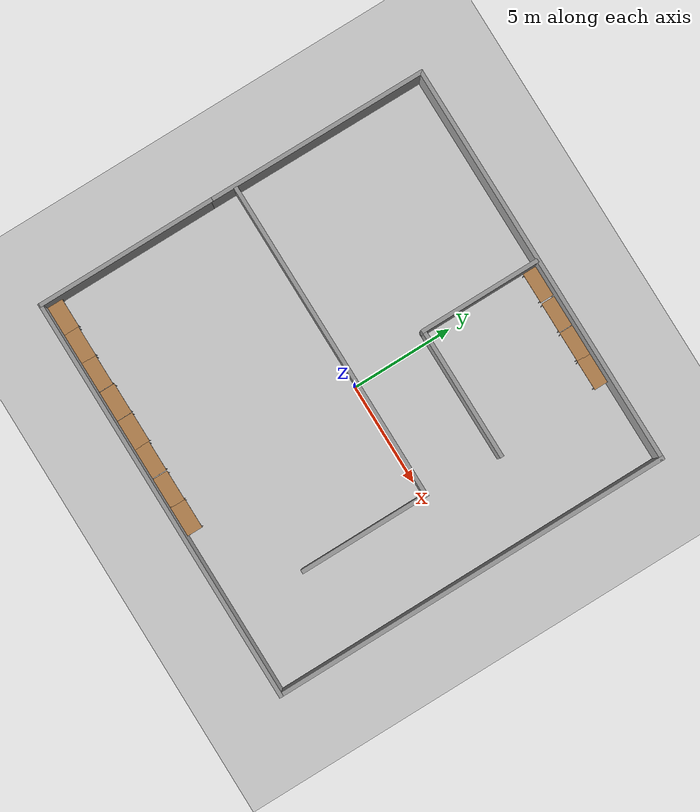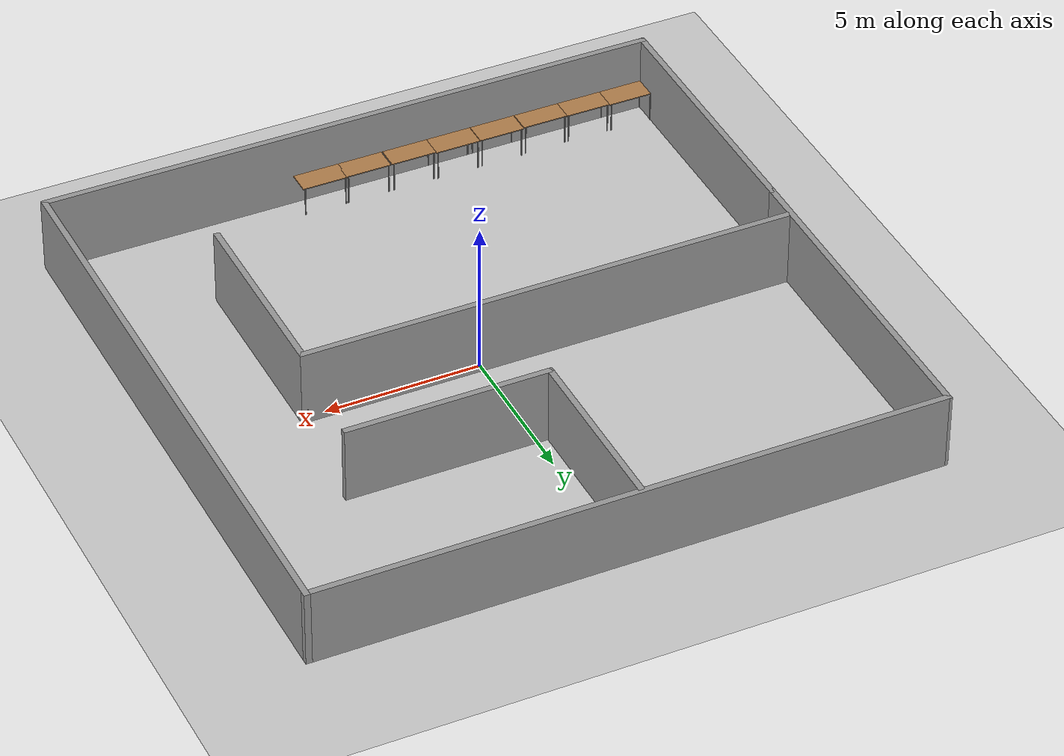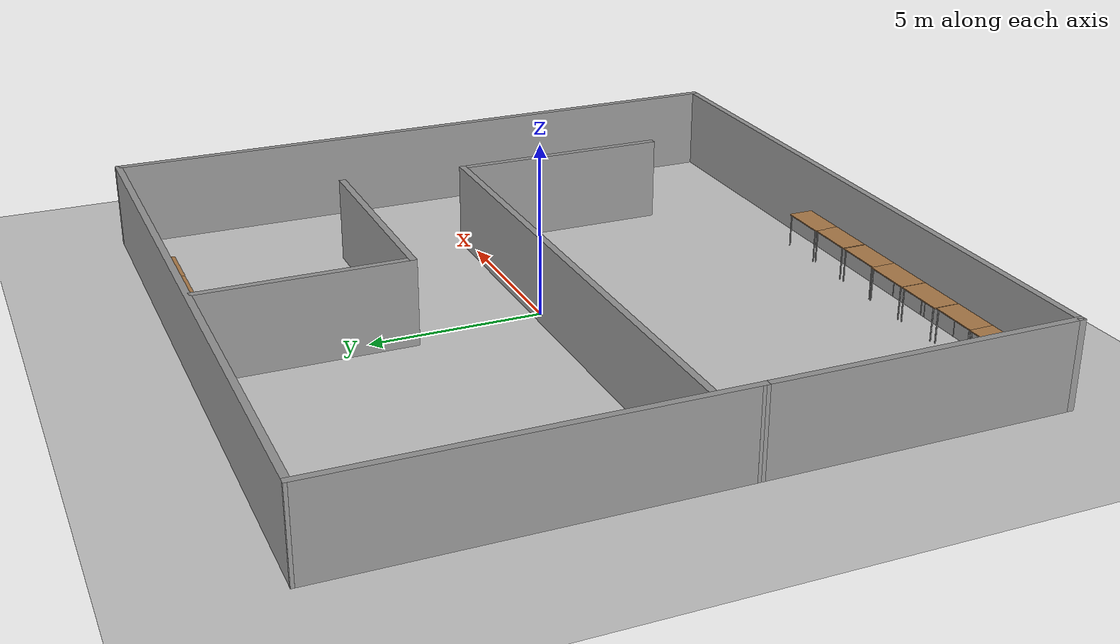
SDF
<sdf version="1.4">
 <world name="default">
  <light name="sun" type="directional">
   <pose>0 0 10 0 -0 0</pose>
   <diffuse>0.8 0.8 0.8 1</diffuse>
   <specular>0.2 0.2 0.2 1</specular>
   <attenuation>
    <range>1000</range>
    <constant>0.9</constant>
    <linear>0.01</linear>
    <quadratic>0.001</quadratic>
   </attenuation>
   <direction>-0.5 0.1 -0.9</direction>
  </light>
  <model name="ground_plane">
   <static>1</static>
   <link name="link">
    <collision name="collision">
     <geometry><plane><normal>0 0 1</normal><size>100 100</size></plane></geometry>
     <surface><friction><ode><mu>100</mu><mu2>50</mu2></ode></friction></surface>
    </collision>
    <visual name="visual">
     <cast_shadows>0</cast_shadows>
     <geometry><plane><normal>0 0 1</normal><size>100 100</size></plane></geometry>
     <material>
      <script><uri>file://media/materials/scripts/gazebo.material</uri><name>Gazebo/Grey</name></script>
     </material>
    </visual>
    <velocity_decay><linear>0</linear><angular>0</angular></velocity_decay>
   </link>
  </model>
  <model name="office">
   <link name="Wall_11">
    <collision name="Wall_11_Collision">
     <geometry><box><size>6.01646 0.2 2.5</size></box></geometry>
     <pose>0 0 1.25 0 -0 0</pose>
    </collision>
    <visual name="Wall_11_Visual">
     <pose>0 0 1.25 0 -0 0</pose>
     <geometry><box><size>6.01646 0.2 2.5</size></box></geometry>
     <material>
      <script><uri>file://media/materials/scripts/gazebo.material</uri><name>Gazebo/Grey</name></script>
     </material>
    </visual>
    <velocity_decay><linear>0</linear><angular>0</angular></velocity_decay>
    <pose>-0.44436 6.75116 0 0 0 -1.5708</pose>
   </link>
   <link name="Wall_12">
    <collision name="Wall_12_Collision">
     <geometry><box><size>6.63524 0.2 2.5</size></box></geometry>
     <pose>0 0 1.25 0 -0 0</pose>
    </collision>
    <visual name="Wall_12_Visual">
     <pose>0 0 1.25 0 -0 0</pose>
     <geometry><box><size>6.63524 0.2 2.5</size></box></geometry>
     <material>
      <script><uri>file://media/materials/scripts/gazebo.material</uri><name>Gazebo/Grey</name></script>
     </material>
    </visual>
    <velocity_decay><linear>0</linear><angular>0</angular></velocity_decay>
    <pose>2.77326 3.84293 0 0 -0 0</pose>
   </link>
   <link name="Wall_2">
    <collision name="Wall_2_Collision">
     <geometry><box><size>8.96801 0.2 2.5</size></box></geometry>
     <pose>0 0 1.25 0 -0 0</pose>
    </collision>
    <visual name="Wall_2_Visual">
     <pose>0 0 1.25 0 -0 0</pose>
     <geometry><box><size>8.96801 0.2 2.5</size></box></geometry>
     <material>
      <script><uri>file://media/materials/scripts/gazebo.material</uri><name>Gazebo/Grey</name></script>
     </material>
    </visual>
    <velocity_decay><linear>0</linear><angular>0</angular></velocity_decay>
    <pose>-10.276 -5.50982 0 0 0 -1.5708</pose>
   </link>
   <link name="Wall_3">
    <collision name="Wall_3_Collision">
     <geometry><box><size>20.3033 0.2 2.5</size></box></geometry>
     <pose>0 0 1.25 0 -0 0</pose>
    </collision>
    <visual name="Wall_3_Visual">
     <pose>0 0 1.25 0 -0 0</pose>
     <geometry><box><size>20.3033 0.2 2.5</size></box></geometry>
     <material>
      <script><uri>file://media/materials/scripts/gazebo.material</uri><name>Gazebo/Grey</name></script>
     </material>
    </visual>
    <velocity_decay><linear>0</linear><angular>0</angular></velocity_decay>
    <pose>-0.224381 -9.89383 0 0 -0 0</pose>
   </link>
   <link name="Wall_4">
    <collision name="Wall_4_Collision">
     <geometry><box><size>19.877 0.2 2.5</size></box></geometry>
     <pose>0 0 1.25 0 -0 0</pose>
    </collision>
    <visual name="Wall_4_Visual">
     <pose>0 0 1.25 0 -0 0</pose>
     <geometry><box><size>19.877 0.2 2.5</size></box></geometry>
     <material>
      <script><uri>file://media/materials/scripts/gazebo.material</uri><name>Gazebo/Grey</name></script>
     </material>
    </visual>
    <velocity_decay><linear>0</linear><angular>0</angular></velocity_decay>
    <pose>9.82727 -0.055341 0 0 -0 1.5708</pose>
   </link>
   <link name="Wall_5">
    <collision name="Wall_5_Collision">
     <geometry><box><size>20.2482 0.2 2.5</size></box></geometry>
     <pose>0 0 1.25 0 -0 0</pose>
    </collision>
    <visual name="Wall_5_Visual">
     <pose>0 0 1.25 0 -0 0</pose>
     <geometry><box><size>20.2482 0.2 2.5</size></box></geometry>
     <material>
      <script><uri>file://media/materials/scripts/gazebo.material</uri><name>Gazebo/Grey</name></script>
     </material>
    </visual>
    <velocity_decay><linear>0</linear><angular>0</angular></velocity_decay>
    <pose>-0.196851 9.78314 0 0 -0 3.14159</pose>
   </link>
   <link name="Wall_6">
    <collision name="Wall_6_Collision">
     <geometry><box><size>11.1091 0.2 2.5</size></box></geometry>
     <pose>0 0 1.25 0 -0 0</pose>
    </collision>
    <visual name="Wall_6_Visual">
     <pose>0 0 1.25 0 -0 0</pose>
     <geometry><box><size>11.1091 0.2 2.5</size></box></geometry>
     <material>
      <script><uri>file://media/materials/scripts/gazebo.material</uri><name>Gazebo/Grey</name></script>
     </material>
    </visual>
    <velocity_decay><linear>0</linear><angular>0</angular></velocity_decay>
    <pose>-10.2485 4.32867 0 0 0 -1.57584</pose>
   </link>
   <link name="Wall_8">
    <collision name="Wall_8_Collision">
     <geometry><box><size>16.0406 0.2 2.5</size></box></geometry>
     <pose>0 0 1.25 0 -0 0</pose>
    </collision>
    <visual name="Wall_8_Visual">
     <pose>0 0 1.25 0 -0 0</pose>
     <geometry><box><size>16.0406 0.2 2.5</size></box></geometry>
     <material>
      <script><uri>file://media/materials/scripts/gazebo.material</uri><name>Gazebo/Grey</name></script>
     </material>
    </visual>
    <velocity_decay><linear>0</linear><angular>0</angular></velocity_decay>
    <pose>-2.17692 0.130291 0 0 -0 0</pose>
   </link>
   <link name="Wall_9">
    <collision name="Wall_9_Collision">
     <geometry><box><size>6.51148 0.2 2.5</size></box></geometry>
     <pose>0 0 1.25 0 -0 0</pose>
    </collision>
    <visual name="Wall_9_Visual">
     <pose>0 0 1.25 0 -0 0</pose>
     <geometry><box><size>6.51148 0.2 2.5</size></box></geometry>
     <material>
      <script><uri>file://media/materials/scripts/gazebo.material</uri><name>Gazebo/Grey</name></script>
     </material>
    </visual>
    <velocity_decay><linear>0</linear><angular>0</angular></velocity_decay>
    <pose>5.74337 -3.02545 0 0 0 -1.5708</pose>
   </link>
   <static>1</static>
  </model>
  <model name="table">
   <static>1</static>
   <link name="link">
    <collision name="surface">
     <pose>0 0 1 0 -0 0</pose>
     <geometry><box><size>1.5 0.8 0.03</size></box></geometry>
     <surface><friction><ode><mu>0.6</mu><mu2>0.6</mu2></ode></friction></surface>
    </collision>
    <visual name="visual1">
     <pose>0 0 1 0 -0 0</pose>
     <geometry><box><size>1.5 0.8 0.03</size></box></geometry>
     <material>
      <script><uri>file://media/materials/scripts/gazebo.material</uri><name>Gazebo/Wood</name></script>
     </material>
    </visual>
    <collision name="front_left_leg">
     <pose>0.68 0.38 0.5 0 -0 0</pose>
     <geometry><cylinder><radius>0.02</radius><length>1</length></cylinder></geometry>
    </collision>
    <visual name="front_left_leg">
     <pose>0.68 0.38 0.5 0 -0 0</pose>
     <geometry><cylinder><radius>0.02</radius><length>1</length></cylinder></geometry>
     <material>
      <script><uri>file://media/materials/scripts/gazebo.material</uri><name>Gazebo/Grey</name></script>
     </material>
    </visual>
    <collision name="front_right_leg">
     <pose>0.68 -0.38 0.5 0 -0 0</pose>
     <geometry><cylinder><radius>0.02</radius><length>1</length></cylinder></geometry>
    </collision>
    <visual name="front_right_leg">
     <pose>0.68 -0.38 0.5 0 -0 0</pose>
     <geometry><cylinder><radius>0.02</radius><length>1</length></cylinder></geometry>
     <material>
      <script><uri>file://media/materials/scripts/gazebo.material</uri><name>Gazebo/Grey</name></script>
     </material>
    </visual>
    <collision name="back_right_leg">
     <pose>-0.68 -0.38 0.5 0 -0 0</pose>
     <geometry><cylinder><radius>0.02</radius><length>1</length></cylinder></geometry>
    </collision>
    <visual name="back_right_leg">
     <pose>-0.68 -0.38 0.5 0 -0 0</pose>
     <geometry><cylinder><radius>0.02</radius><length>1</length></cylinder></geometry>
     <material>
      <script><uri>file://media/materials/scripts/gazebo.material</uri><name>Gazebo/Grey</name></script>
     </material>
    </visual>
    <collision name="back_left_leg">
     <pose>-0.68 0.38 0.5 0 -0 0</pose>
     <geometry><cylinder><radius>0.02</radius><length>1</length></cylinder></geometry>
    </collision>
    <visual name="back_left_leg">
     <pose>-0.68 0.38 0.5 0 -0 0</pose>
     <geometry><cylinder><radius>0.02</radius><length>1</length></cylinder></geometry>
     <material>
      <script><uri>file://media/materials/scripts/gazebo.material</uri><name>Gazebo/Grey</name></script>
     </material>
    </visual>
    <velocity_decay><linear>0</linear><angular>0</angular></velocity_decay>
   </link>
   <pose>-9.49029 -9.42928 0 0 -0 0</pose>
  </model>
  <model name="table_0">
   <static>1</static>
   <link name="link">
    <collision name="surface">
     <pose>0 0 1 0 -0 0</pose>
     <geometry><box><size>1.5 0.8 0.03</size></box></geometry>
     <surface><friction><ode><mu>0.6</mu><mu2>0.6</mu2></ode></friction></surface>
    </collision>
    <visual name="visual1">
     <pose>0 0 1 0 -0 0</pose>
     <geometry><box><size>1.5 0.8 0.03</size></box></geometry>
     <material>
      <script><uri>file://media/materials/scripts/gazebo.material</uri><name>Gazebo/Wood</name></script>
     </material>
    </visual>
    <collision name="front_left_leg">
     <pose>0.68 0.38 0.5 0 -0 0</pose>
     <geometry><cylinder><radius>0.02</radius><length>1</length></cylinder></geometry>
    </collision>
    <visual name="front_left_leg">
     <pose>0.68 0.38 0.5 0 -0 0</pose>
     <geometry><cylinder><radius>0.02</radius><length>1</length></cylinder></geometry>
     <material>
      <script><uri>file://media/materials/scripts/gazebo.material</uri><name>Gazebo/Grey</name></script>
     </material>
    </visual>
    <collision name="front_right_leg">
     <pose>0.68 -0.38 0.5 0 -0 0</pose>
     <geometry><cylinder><radius>0.02</radius><length>1</length></cylinder></geometry>
    </collision>
    <visual name="front_right_leg">
     <pose>0.68 -0.38 0.5 0 -0 0</pose>
     <geometry><cylinder><radius>0.02</radius><length>1</length></cylinder></geometry>
     <material>
      <script><uri>file://media/materials/scripts/gazebo.material</uri><name>Gazebo/Grey</name></script>
     </material>
    </visual>
    <collision name="back_right_leg">
     <pose>-0.68 -0.38 0.5 0 -0 0</pose>
     <geometry><cylinder><radius>0.02</radius><length>1</length></cylinder></geometry>
    </collision>
    <visual name="back_right_leg">
     <pose>-0.68 -0.38 0.5 0 -0 0</pose>
     <geometry><cylinder><radius>0.02</radius><length>1</length></cylinder></geometry>
     <material>
      <script><uri>file://media/materials/scripts/gazebo.material</uri><name>Gazebo/Grey</name></script>
     </material>
    </visual>
    <collision name="back_left_leg">
     <pose>-0.68 0.38 0.5 0 -0 0</pose>
     <geometry><cylinder><radius>0.02</radius><length>1</length></cylinder></geometry>
    </collision>
    <visual name="back_left_leg">
     <pose>-0.68 0.38 0.5 0 -0 0</pose>
     <geometry><cylinder><radius>0.02</radius><length>1</length></cylinder></geometry>
     <material>
      <script><uri>file://media/materials/scripts/gazebo.material</uri><name>Gazebo/Grey</name></script>
     </material>
    </visual>
    <velocity_decay><linear>0</linear><angular>0</angular></velocity_decay>
   </link>
   <pose>-8 -9.45963 0 0 -0 0</pose>
  </model>
  <model name="table_1">
   <static>1</static>
   <link name="link">
    <collision name="surface">
     <pose>0 0 1 0 -0 0</pose>
     <geometry><box><size>1.5 0.8 0.03</size></box></geometry>
     <surface><friction><ode><mu>0.6</mu><mu2>0.6</mu2></ode></friction></surface>
    </collision>
    <visual name="visual1">
     <pose>0 0 1 0 -0 0</pose>
     <geometry><box><size>1.5 0.8 0.03</size></box></geometry>
     <material>
      <script><uri>file://media/materials/scripts/gazebo.material</uri><name>Gazebo/Wood</name></script>
     </material>
    </visual>
    <collision name="front_left_leg">
     <pose>0.68 0.38 0.5 0 -0 0</pose>
     <geometry><cylinder><radius>0.02</radius><length>1</length></cylinder></geometry>
    </collision>
    <visual name="front_left_leg">
     <pose>0.68 0.38 0.5 0 -0 0</pose>
     <geometry><cylinder><radius>0.02</radius><length>1</length></cylinder></geometry>
     <material>
      <script><uri>file://media/materials/scripts/gazebo.material</uri><name>Gazebo/Grey</name></script>
     </material>
    </visual>
    <collision name="front_right_leg">
     <pose>0.68 -0.38 0.5 0 -0 0</pose>
     <geometry><cylinder><radius>0.02</radius><length>1</length></cylinder></geometry>
    </collision>
    <visual name="front_right_leg">
     <pose>0.68 -0.38 0.5 0 -0 0</pose>
     <geometry><cylinder><radius>0.02</radius><length>1</length></cylinder></geometry>
     <material>
      <script><uri>file://media/materials/scripts/gazebo.material</uri><name>Gazebo/Grey</name></script>
     </material>
    </visual>
    <collision name="back_right_leg">
     <pose>-0.68 -0.38 0.5 0 -0 0</pose>
     <geometry><cylinder><radius>0.02</radius><length>1</length></cylinder></geometry>
    </collision>
    <visual name="back_right_leg">
     <pose>-0.68 -0.38 0.5 0 -0 0</pose>
     <geometry><cylinder><radius>0.02</radius><length>1</length></cylinder></geometry>
     <material>
      <script><uri>file://media/materials/scripts/gazebo.material</uri><name>Gazebo/Grey</name></script>
     </material>
    </visual>
    <collision name="back_left_leg">
     <pose>-0.68 0.38 0.5 0 -0 0</pose>
     <geometry><cylinder><radius>0.02</radius><length>1</length></cylinder></geometry>
    </collision>
    <visual name="back_left_leg">
     <pose>-0.68 0.38 0.5 0 -0 0</pose>
     <geometry><cylinder><radius>0.02</radius><length>1</length></cylinder></geometry>
     <material>
      <script><uri>file://media/materials/scripts/gazebo.material</uri><name>Gazebo/Grey</name></script>
     </material>
    </visual>
    <velocity_decay><linear>0</linear><angular>0</angular></velocity_decay>
   </link>
   <pose>-6.51969 -9.47316 0 0 -0 0</pose>
  </model>
  <model name="table_2">
   <static>1</static>
   <link name="link">
    <collision name="surface">
     <pose>0 0 1 0 -0 0</pose>
     <geometry><box><size>1.5 0.8 0.03</size></box></geometry>
     <surface><friction><ode><mu>0.6</mu><mu2>0.6</mu2></ode></friction></surface>
    </collision>
    <visual name="visual1">
     <pose>0 0 1 0 -0 0</pose>
     <geometry><box><size>1.5 0.8 0.03</size></box></geometry>
     <material>
      <script><uri>file://media/materials/scripts/gazebo.material</uri><name>Gazebo/Wood</name></script>
     </material>
    </visual>
    <collision name="front_left_leg">
     <pose>0.68 0.38 0.5 0 -0 0</pose>
     <geometry><cylinder><radius>0.02</radius><length>1</length></cylinder></geometry>
    </collision>
    <visual name="front_left_leg">
     <pose>0.68 0.38 0.5 0 -0 0</pose>
     <geometry><cylinder><radius>0.02</radius><length>1</length></cylinder></geometry>
     <material>
      <script><uri>file://media/materials/scripts/gazebo.material</uri><name>Gazebo/Grey</name></script>
     </material>
    </visual>
    <collision name="front_right_leg">
     <pose>0.68 -0.38 0.5 0 -0 0</pose>
     <geometry><cylinder><radius>0.02</radius><length>1</length></cylinder></geometry>
    </collision>
    <visual name="front_right_leg">
     <pose>0.68 -0.38 0.5 0 -0 0</pose>
     <geometry><cylinder><radius>0.02</radius><length>1</length></cylinder></geometry>
     <material>
      <script><uri>file://media/materials/scripts/gazebo.material</uri><name>Gazebo/Grey</name></script>
     </material>
    </visual>
    <collision name="back_right_leg">
     <pose>-0.68 -0.38 0.5 0 -0 0</pose>
     <geometry><cylinder><radius>0.02</radius><length>1</length></cylinder></geometry>
    </collision>
    <visual name="back_right_leg">
     <pose>-0.68 -0.38 0.5 0 -0 0</pose>
     <geometry><cylinder><radius>0.02</radius><length>1</length></cylinder></geometry>
     <material>
      <script><uri>file://media/materials/scripts/gazebo.material</uri><name>Gazebo/Grey</name></script>
     </material>
    </visual>
    <collision name="back_left_leg">
     <pose>-0.68 0.38 0.5 0 -0 0</pose>
     <geometry><cylinder><radius>0.02</radius><length>1</length></cylinder></geometry>
    </collision>
    <visual name="back_left_leg">
     <pose>-0.68 0.38 0.5 0 -0 0</pose>
     <geometry><cylinder><radius>0.02</radius><length>1</length></cylinder></geometry>
     <material>
      <script><uri>file://media/materials/scripts/gazebo.material</uri><name>Gazebo/Grey</name></script>
     </material>
    </visual>
    <velocity_decay><linear>0</linear><angular>0</angular></velocity_decay>
   </link>
   <pose>-5 -9.42729 0 0 -0 0</pose>
  </model>
  <model name="table_3">
   <static>1</static>
   <link name="link">
    <collision name="surface">
     <pose>0 0 1 0 -0 0</pose>
     <geometry><box><size>1.5 0.8 0.03</size></box></geometry>
     <surface><friction><ode><mu>0.6</mu><mu2>0.6</mu2></ode></friction></surface>
    </collision>
    <visual name="visual1">
     <pose>0 0 1 0 -0 0</pose>
     <geometry><box><size>1.5 0.8 0.03</size></box></geometry>
     <material>
      <script><uri>file://media/materials/scripts/gazebo.material</uri><name>Gazebo/Wood</name></script>
     </material>
    </visual>
    <collision name="front_left_leg">
     <pose>0.68 0.38 0.5 0 -0 0</pose>
     <geometry><cylinder><radius>0.02</radius><length>1</length></cylinder></geometry>
    </collision>
    <visual name="front_left_leg">
     <pose>0.68 0.38 0.5 0 -0 0</pose>
     <geometry><cylinder><radius>0.02</radius><length>1</length></cylinder></geometry>
     <material>
      <script><uri>file://media/materials/scripts/gazebo.material</uri><name>Gazebo/Grey</name></script>
     </material>
    </visual>
    <collision name="front_right_leg">
     <pose>0.68 -0.38 0.5 0 -0 0</pose>
     <geometry><cylinder><radius>0.02</radius><length>1</length></cylinder></geometry>
    </collision>
    <visual name="front_right_leg">
     <pose>0.68 -0.38 0.5 0 -0 0</pose>
     <geometry><cylinder><radius>0.02</radius><length>1</length></cylinder></geometry>
     <material>
      <script><uri>file://media/materials/scripts/gazebo.material</uri><name>Gazebo/Grey</name></script>
     </material>
    </visual>
    <collision name="back_right_leg">
     <pose>-0.68 -0.38 0.5 0 -0 0</pose>
     <geometry><cylinder><radius>0.02</radius><length>1</length></cylinder></geometry>
    </collision>
    <visual name="back_right_leg">
     <pose>-0.68 -0.38 0.5 0 -0 0</pose>
     <geometry><cylinder><radius>0.02</radius><length>1</length></cylinder></geometry>
     <material>
      <script><uri>file://media/materials/scripts/gazebo.material</uri><name>Gazebo/Grey</name></script>
     </material>
    </visual>
    <collision name="back_left_leg">
     <pose>-0.68 0.38 0.5 0 -0 0</pose>
     <geometry><cylinder><radius>0.02</radius><length>1</length></cylinder></geometry>
    </collision>
    <visual name="back_left_leg">
     <pose>-0.68 0.38 0.5 0 -0 0</pose>
     <geometry><cylinder><radius>0.02</radius><length>1</length></cylinder></geometry>
     <material>
      <script><uri>file://media/materials/scripts/gazebo.material</uri><name>Gazebo/Grey</name></script>
     </material>
    </visual>
    <velocity_decay><linear>0</linear><angular>0</angular></velocity_decay>
   </link>
   <pose>-3.48478 -9.42209 0 0 -0 0</pose>
  </model>
  <model name="table_4">
   <static>1</static>
   <link name="link">
    <collision name="surface">
     <pose>0 0 1 0 -0 0</pose>
     <geometry><box><size>1.5 0.8 0.03</size></box></geometry>
     <surface><friction><ode><mu>0.6</mu><mu2>0.6</mu2></ode></friction></surface>
    </collision>
    <visual name="visual1">
     <pose>0 0 1 0 -0 0</pose>
     <geometry><box><size>1.5 0.8 0.03</size></box></geometry>
     <material>
      <script><uri>file://media/materials/scripts/gazebo.material</uri><name>Gazebo/Wood</name></script>
     </material>
    </visual>
    <collision name="front_left_leg">
     <pose>0.68 0.38 0.5 0 -0 0</pose>
     <geometry><cylinder><radius>0.02</radius><length>1</length></cylinder></geometry>
    </collision>
    <visual name="front_left_leg">
     <pose>0.68 0.38 0.5 0 -0 0</pose>
     <geometry><cylinder><radius>0.02</radius><length>1</length></cylinder></geometry>
     <material>
      <script><uri>file://media/materials/scripts/gazebo.material</uri><name>Gazebo/Grey</name></script>
     </material>
    </visual>
    <collision name="front_right_leg">
     <pose>0.68 -0.38 0.5 0 -0 0</pose>
     <geometry><cylinder><radius>0.02</radius><length>1</length></cylinder></geometry>
    </collision>
    <visual name="front_right_leg">
     <pose>0.68 -0.38 0.5 0 -0 0</pose>
     <geometry><cylinder><radius>0.02</radius><length>1</length></cylinder></geometry>
     <material>
      <script><uri>file://media/materials/scripts/gazebo.material</uri><name>Gazebo/Grey</name></script>
     </material>
    </visual>
    <collision name="back_right_leg">
     <pose>-0.68 -0.38 0.5 0 -0 0</pose>
     <geometry><cylinder><radius>0.02</radius><length>1</length></cylinder></geometry>
    </collision>
    <visual name="back_right_leg">
     <pose>-0.68 -0.38 0.5 0 -0 0</pose>
     <geometry><cylinder><radius>0.02</radius><length>1</length></cylinder></geometry>
     <material>
      <script><uri>file://media/materials/scripts/gazebo.material</uri><name>Gazebo/Grey</name></script>
     </material>
    </visual>
    <collision name="back_left_leg">
     <pose>-0.68 0.38 0.5 0 -0 0</pose>
     <geometry><cylinder><radius>0.02</radius><length>1</length></cylinder></geometry>
    </collision>
    <visual name="back_left_leg">
     <pose>-0.68 0.38 0.5 0 -0 0</pose>
     <geometry><cylinder><radius>0.02</radius><length>1</length></cylinder></geometry>
     <material>
      <script><uri>file://media/materials/scripts/gazebo.material</uri><name>Gazebo/Grey</name></script>
     </material>
    </visual>
    <velocity_decay><linear>0</linear><angular>0</angular></velocity_decay>
   </link>
   <pose>-2 -9.46141 0 0 -0 0</pose>
  </model>
  <model name="table_5">
   <static>1</static>
   <link name="link">
    <collision name="surface">
     <pose>0 0 1 0 -0 0</pose>
     <geometry><box><size>1.5 0.8 0.03</size></box></geometry>
     <surface><friction><ode><mu>0.6</mu><mu2>0.6</mu2></ode></friction></surface>
    </collision>
    <visual name="visual1">
     <pose>0 0 1 0 -0 0</pose>
     <geometry><box><size>1.5 0.8 0.03</size></box></geometry>
     <material>
      <script><uri>file://media/materials/scripts/gazebo.material</uri><name>Gazebo/Wood</name></script>
     </material>
    </visual>
    <collision name="front_left_leg">
     <pose>0.68 0.38 0.5 0 -0 0</pose>
     <geometry><cylinder><radius>0.02</radius><length>1</length></cylinder></geometry>
    </collision>
    <visual name="front_left_leg">
     <pose>0.68 0.38 0.5 0 -0 0</pose>
     <geometry><cylinder><radius>0.02</radius><length>1</length></cylinder></geometry>
     <material>
      <script><uri>file://media/materials/scripts/gazebo.material</uri><name>Gazebo/Grey</name></script>
     </material>
    </visual>
    <collision name="front_right_leg">
     <pose>0.68 -0.38 0.5 0 -0 0</pose>
     <geometry><cylinder><radius>0.02</radius><length>1</length></cylinder></geometry>
    </collision>
    <visual name="front_right_leg">
     <pose>0.68 -0.38 0.5 0 -0 0</pose>
     <geometry><cylinder><radius>0.02</radius><length>1</length></cylinder></geometry>
     <material>
      <script><uri>file://media/materials/scripts/gazebo.material</uri><name>Gazebo/Grey</name></script>
     </material>
    </visual>
    <collision name="back_right_leg">
     <pose>-0.68 -0.38 0.5 0 -0 0</pose>
     <geometry><cylinder><radius>0.02</radius><length>1</length></cylinder></geometry>
    </collision>
    <visual name="back_right_leg">
     <pose>-0.68 -0.38 0.5 0 -0 0</pose>
     <geometry><cylinder><radius>0.02</radius><length>1</length></cylinder></geometry>
     <material>
      <script><uri>file://media/materials/scripts/gazebo.material</uri><name>Gazebo/Grey</name></script>
     </material>
    </visual>
    <collision name="back_left_leg">
     <pose>-0.68 0.38 0.5 0 -0 0</pose>
     <geometry><cylinder><radius>0.02</radius><length>1</length></cylinder></geometry>
    </collision>
    <visual name="back_left_leg">
     <pose>-0.68 0.38 0.5 0 -0 0</pose>
     <geometry><cylinder><radius>0.02</radius><length>1</length></cylinder></geometry>
     <material>
      <script><uri>file://media/materials/scripts/gazebo.material</uri><name>Gazebo/Grey</name></script>
     </material>
    </visual>
    <velocity_decay><linear>0</linear><angular>0</angular></velocity_decay>
   </link>
   <pose>-0.459664 -9.45739 0 0 -0 0</pose>
  </model>
  <model name="table_6">
   <static>1</static>
   <link name="link">
    <collision name="surface">
     <pose>0 0 1 0 -0 0</pose>
     <geometry><box><size>1.5 0.8 0.03</size></box></geometry>
     <surface><friction><ode><mu>0.6</mu><mu2>0.6</mu2></ode></friction></surface>
    </collision>
    <visual name="visual1">
     <pose>0 0 1 0 -0 0</pose>
     <geometry><box><size>1.5 0.8 0.03</size></box></geometry>
     <material>
      <script><uri>file://media/materials/scripts/gazebo.material</uri><name>Gazebo/Wood</name></script>
     </material>
    </visual>
    <collision name="front_left_leg">
     <pose>0.68 0.38 0.5 0 -0 0</pose>
     <geometry><cylinder><radius>0.02</radius><length>1</length></cylinder></geometry>
    </collision>
    <visual name="front_left_leg">
     <pose>0.68 0.38 0.5 0 -0 0</pose>
     <geometry><cylinder><radius>0.02</radius><length>1</length></cylinder></geometry>
     <material>
      <script><uri>file://media/materials/scripts/gazebo.material</uri><name>Gazebo/Grey</name></script>
     </material>
    </visual>
    <collision name="front_right_leg">
     <pose>0.68 -0.38 0.5 0 -0 0</pose>
     <geometry><cylinder><radius>0.02</radius><length>1</length></cylinder></geometry>
    </collision>
    <visual name="front_right_leg">
     <pose>0.68 -0.38 0.5 0 -0 0</pose>
     <geometry><cylinder><radius>0.02</radius><length>1</length></cylinder></geometry>
     <material>
      <script><uri>file://media/materials/scripts/gazebo.material</uri><name>Gazebo/Grey</name></script>
     </material>
    </visual>
    <collision name="back_right_leg">
     <pose>-0.68 -0.38 0.5 0 -0 0</pose>
     <geometry><cylinder><radius>0.02</radius><length>1</length></cylinder></geometry>
    </collision>
    <visual name="back_right_leg">
     <pose>-0.68 -0.38 0.5 0 -0 0</pose>
     <geometry><cylinder><radius>0.02</radius><length>1</length></cylinder></geometry>
     <material>
      <script><uri>file://media/materials/scripts/gazebo.material</uri><name>Gazebo/Grey</name></script>
     </material>
    </visual>
    <collision name="back_left_leg">
     <pose>-0.68 0.38 0.5 0 -0 0</pose>
     <geometry><cylinder><radius>0.02</radius><length>1</length></cylinder></geometry>
    </collision>
    <visual name="back_left_leg">
     <pose>-0.68 0.38 0.5 0 -0 0</pose>
     <geometry><cylinder><radius>0.02</radius><length>1</length></cylinder></geometry>
     <material>
      <script><uri>file://media/materials/scripts/gazebo.material</uri><name>Gazebo/Grey</name></script>
     </material>
    </visual>
    <velocity_decay><linear>0</linear><angular>0</angular></velocity_decay>
   </link>
   <pose>1 -9.43873 0 0 -0 0</pose>
  </model>
  <model name="table_7">
   <static>1</static>
   <link name="link">
    <collision name="surface">
     <pose>0 0 1 0 -0 0</pose>
     <geometry><box><size>1.5 0.8 0.03</size></box></geometry>
     <surface><friction><ode><mu>0.6</mu><mu2>0.6</mu2></ode></friction></surface>
    </collision>
    <visual name="visual1">
     <pose>0 0 1 0 -0 0</pose>
     <geometry><box><size>1.5 0.8 0.03</size></box></geometry>
     <material>
      <script><uri>file://media/materials/scripts/gazebo.material</uri><name>Gazebo/Wood</name></script>
     </material>
    </visual>
    <collision name="front_left_leg">
     <pose>0.68 0.38 0.5 0 -0 0</pose>
     <geometry><cylinder><radius>0.02</radius><length>1</length></cylinder></geometry>
    </collision>
    <visual name="front_left_leg">
     <pose>0.68 0.38 0.5 0 -0 0</pose>
     <geometry><cylinder><radius>0.02</radius><length>1</length></cylinder></geometry>
     <material>
      <script><uri>file://media/materials/scripts/gazebo.material</uri><name>Gazebo/Grey</name></script>
     </material>
    </visual>
    <collision name="front_right_leg">
     <pose>0.68 -0.38 0.5 0 -0 0</pose>
     <geometry><cylinder><radius>0.02</radius><length>1</length></cylinder></geometry>
    </collision>
    <visual name="front_right_leg">
     <pose>0.68 -0.38 0.5 0 -0 0</pose>
     <geometry><cylinder><radius>0.02</radius><length>1</length></cylinder></geometry>
     <material>
      <script><uri>file://media/materials/scripts/gazebo.material</uri><name>Gazebo/Grey</name></script>
     </material>
    </visual>
    <collision name="back_right_leg">
     <pose>-0.68 -0.38 0.5 0 -0 0</pose>
     <geometry><cylinder><radius>0.02</radius><length>1</length></cylinder></geometry>
    </collision>
    <visual name="back_right_leg">
     <pose>-0.68 -0.38 0.5 0 -0 0</pose>
     <geometry><cylinder><radius>0.02</radius><length>1</length></cylinder></geometry>
     <material>
      <script><uri>file://media/materials/scripts/gazebo.material</uri><name>Gazebo/Grey</name></script>
     </material>
    </visual>
    <collision name="back_left_leg">
     <pose>-0.68 0.38 0.5 0 -0 0</pose>
     <geometry><cylinder><radius>0.02</radius><length>1</length></cylinder></geometry>
    </collision>
    <visual name="back_left_leg">
     <pose>-0.68 0.38 0.5 0 -0 0</pose>
     <geometry><cylinder><radius>0.02</radius><length>1</length></cylinder></geometry>
     <material>
      <script><uri>file://media/materials/scripts/gazebo.material</uri><name>Gazebo/Grey</name></script>
     </material>
    </visual>
    <velocity_decay><linear>0</linear><angular>0</angular></velocity_decay>
   </link>
   <pose>0.436046 9.42031 0 0 -0 0</pose>
  </model>
  <model name="table_8">
   <static>1</static>
   <link name="link">
    <collision name="surface">
     <pose>0 0 1 0 -0 0</pose>
     <geometry><box><size>1.5 0.8 0.03</size></box></geometry>
     <surface><friction><ode><mu>0.6</mu><mu2>0.6</mu2></ode></friction></surface>
    </collision>
    <visual name="visual1">
     <pose>0 0 1 0 -0 0</pose>
     <geometry><box><size>1.5 0.8 0.03</size></box></geometry>
     <material>
      <script><uri>file://media/materials/scripts/gazebo.material</uri><name>Gazebo/Wood</name></script>
     </material>
    </visual>
    <collision name="front_left_leg">
     <pose>0.68 0.38 0.5 0 -0 0</pose>
     <geometry><cylinder><radius>0.02</radius><length>1</length></cylinder></geometry>
    </collision>
    <visual name="front_left_leg">
     <pose>0.68 0.38 0.5 0 -0 0</pose>
     <geometry><cylinder><radius>0.02</radius><length>1</length></cylinder></geometry>
     <material>
      <script><uri>file://media/materials/scripts/gazebo.material</uri><name>Gazebo/Grey</name></script>
     </material>
    </visual>
    <collision name="front_right_leg">
     <pose>0.68 -0.38 0.5 0 -0 0</pose>
     <geometry><cylinder><radius>0.02</radius><length>1</length></cylinder></geometry>
    </collision>
    <visual name="front_right_leg">
     <pose>0.68 -0.38 0.5 0 -0 0</pose>
     <geometry><cylinder><radius>0.02</radius><length>1</length></cylinder></geometry>
     <material>
      <script><uri>file://media/materials/scripts/gazebo.material</uri><name>Gazebo/Grey</name></script>
     </material>
    </visual>
    <collision name="back_right_leg">
     <pose>-0.68 -0.38 0.5 0 -0 0</pose>
     <geometry><cylinder><radius>0.02</radius><length>1</length></cylinder></geometry>
    </collision>
    <visual name="back_right_leg">
     <pose>-0.68 -0.38 0.5 0 -0 0</pose>
     <geometry><cylinder><radius>0.02</radius><length>1</length></cylinder></geometry>
     <material>
      <script><uri>file://media/materials/scripts/gazebo.material</uri><name>Gazebo/Grey</name></script>
     </material>
    </visual>
    <collision name="back_left_leg">
     <pose>-0.68 0.38 0.5 0 -0 0</pose>
     <geometry><cylinder><radius>0.02</radius><length>1</length></cylinder></geometry>
    </collision>
    <visual name="back_left_leg">
     <pose>-0.68 0.38 0.5 0 -0 0</pose>
     <geometry><cylinder><radius>0.02</radius><length>1</length></cylinder></geometry>
     <material>
      <script><uri>file://media/materials/scripts/gazebo.material</uri><name>Gazebo/Grey</name></script>
     </material>
    </visual>
    <velocity_decay><linear>0</linear><angular>0</angular></velocity_decay>
   </link>
   <pose>2 9.42148 0 0 -0 0</pose>
  </model>
  <model name="table_9">
   <static>1</static>
   <link name="link">
    <collision name="surface">
     <pose>0 0 1 0 -0 0</pose>
     <geometry><box><size>1.5 0.8 0.03</size></box></geometry>
     <surface><friction><ode><mu>0.6</mu><mu2>0.6</mu2></ode></friction></surface>
    </collision>
    <visual name="visual1">
     <pose>0 0 1 0 -0 0</pose>
     <geometry><box><size>1.5 0.8 0.03</size></box></geometry>
     <material>
      <script><uri>file://media/materials/scripts/gazebo.material</uri><name>Gazebo/Wood</name></script>
     </material>
    </visual>
    <collision name="front_left_leg">
     <pose>0.68 0.38 0.5 0 -0 0</pose>
     <geometry><cylinder><radius>0.02</radius><length>1</length></cylinder></geometry>
    </collision>
    <visual name="front_left_leg">
     <pose>0.68 0.38 0.5 0 -0 0</pose>
     <geometry><cylinder><radius>0.02</radius><length>1</length></cylinder></geometry>
     <material>
      <script><uri>file://media/materials/scripts/gazebo.material</uri><name>Gazebo/Grey</name></script>
     </material>
    </visual>
    <collision name="front_right_leg">
     <pose>0.68 -0.38 0.5 0 -0 0</pose>
     <geometry><cylinder><radius>0.02</radius><length>1</length></cylinder></geometry>
    </collision>
    <visual name="front_right_leg">
     <pose>0.68 -0.38 0.5 0 -0 0</pose>
     <geometry><cylinder><radius>0.02</radius><length>1</length></cylinder></geometry>
     <material>
      <script><uri>file://media/materials/scripts/gazebo.material</uri><name>Gazebo/Grey</name></script>
     </material>
    </visual>
    <collision name="back_right_leg">
     <pose>-0.68 -0.38 0.5 0 -0 0</pose>
     <geometry><cylinder><radius>0.02</radius><length>1</length></cylinder></geometry>
    </collision>
    <visual name="back_right_leg">
     <pose>-0.68 -0.38 0.5 0 -0 0</pose>
     <geometry><cylinder><radius>0.02</radius><length>1</length></cylinder></geometry>
     <material>
      <script><uri>file://media/materials/scripts/gazebo.material</uri><name>Gazebo/Grey</name></script>
     </material>
    </visual>
    <collision name="back_left_leg">
     <pose>-0.68 0.38 0.5 0 -0 0</pose>
     <geometry><cylinder><radius>0.02</radius><length>1</length></cylinder></geometry>
    </collision>
    <visual name="back_left_leg">
     <pose>-0.68 0.38 0.5 0 -0 0</pose>
     <geometry><cylinder><radius>0.02</radius><length>1</length></cylinder></geometry>
     <material>
      <script><uri>file://media/materials/scripts/gazebo.material</uri><name>Gazebo/Grey</name></script>
     </material>
    </visual>
    <velocity_decay><linear>0</linear><angular>0</angular></velocity_decay>
   </link>
   <pose>3.52973 9.42342 0 0 -0 0</pose>
  </model>
  <model name="table_10">
   <static>1</static>
   <link name="link">
    <collision name="surface">
     <pose>0 0 1 0 -0 0</pose>
     <geometry><box><size>1.5 0.8 0.03</size></box></geometry>
     <surface><friction><ode><mu>0.6</mu><mu2>0.6</mu2></ode></friction></surface>
    </collision>
    <visual name="visual1">
     <pose>0 0 1 0 -0 0</pose>
     <geometry><box><size>1.5 0.8 0.03</size></box></geometry>
     <material>
      <script><uri>file://media/materials/scripts/gazebo.material</uri><name>Gazebo/Wood</name></script>
     </material>
    </visual>
    <collision name="front_left_leg">
     <pose>0.68 0.38 0.5 0 -0 0</pose>
     <geometry><cylinder><radius>0.02</radius><length>1</length></cylinder></geometry>
    </collision>
    <visual name="front_left_leg">
     <pose>0.68 0.38 0.5 0 -0 0</pose>
     <geometry><cylinder><radius>0.02</radius><length>1</length></cylinder></geometry>
     <material>
      <script><uri>file://media/materials/scripts/gazebo.material</uri><name>Gazebo/Grey</name></script>
     </material>
    </visual>
    <collision name="front_right_leg">
     <pose>0.68 -0.38 0.5 0 -0 0</pose>
     <geometry><cylinder><radius>0.02</radius><length>1</length></cylinder></geometry>
    </collision>
    <visual name="front_right_leg">
     <pose>0.68 -0.38 0.5 0 -0 0</pose>
     <geometry><cylinder><radius>0.02</radius><length>1</length></cylinder></geometry>
     <material>
      <script><uri>file://media/materials/scripts/gazebo.material</uri><name>Gazebo/Grey</name></script>
     </material>
    </visual>
    <collision name="back_right_leg">
     <pose>-0.68 -0.38 0.5 0 -0 0</pose>
     <geometry><cylinder><radius>0.02</radius><length>1</length></cylinder></geometry>
    </collision>
    <visual name="back_right_leg">
     <pose>-0.68 -0.38 0.5 0 -0 0</pose>
     <geometry><cylinder><radius>0.02</radius><length>1</length></cylinder></geometry>
     <material>
      <script><uri>file://media/materials/scripts/gazebo.material</uri><name>Gazebo/Grey</name></script>
     </material>
    </visual>
    <collision name="back_left_leg">
     <pose>-0.68 0.38 0.5 0 -0 0</pose>
     <geometry><cylinder><radius>0.02</radius><length>1</length></cylinder></geometry>
    </collision>
    <visual name="back_left_leg">
     <pose>-0.68 0.38 0.5 0 -0 0</pose>
     <geometry><cylinder><radius>0.02</radius><length>1</length></cylinder></geometry>
     <material>
      <script><uri>file://media/materials/scripts/gazebo.material</uri><name>Gazebo/Grey</name></script>
     </material>
    </visual>
    <velocity_decay><linear>0</linear><angular>0</angular></velocity_decay>
   </link>
   <pose>5 9.41476 0 0 -0 0</pose>
  </model>
  <physics type="ode">
   <max_step_size>0.001</max_step_size>
   <real_time_factor>1</real_time_factor>
   <real_time_update_rate>1000</real_time_update_rate>
   <gravity>0 0 -9.8</gravity>
  </physics>
  <scene><ambient>0.4 0.4 0.4 1</ambient><background>0.7 0.7 0.7 1</background><shadows>1</shadows></scene>
  <spherical_coordinates>
   <surface_model>EARTH_WGS84</surface_model>
   <latitude_deg>0</latitude_deg>
   <longitude_deg>0</longitude_deg>
   <elevation>0</elevation>
   <heading_deg>0</heading_deg>
  </spherical_coordinates>
 </world>
</sdf>
